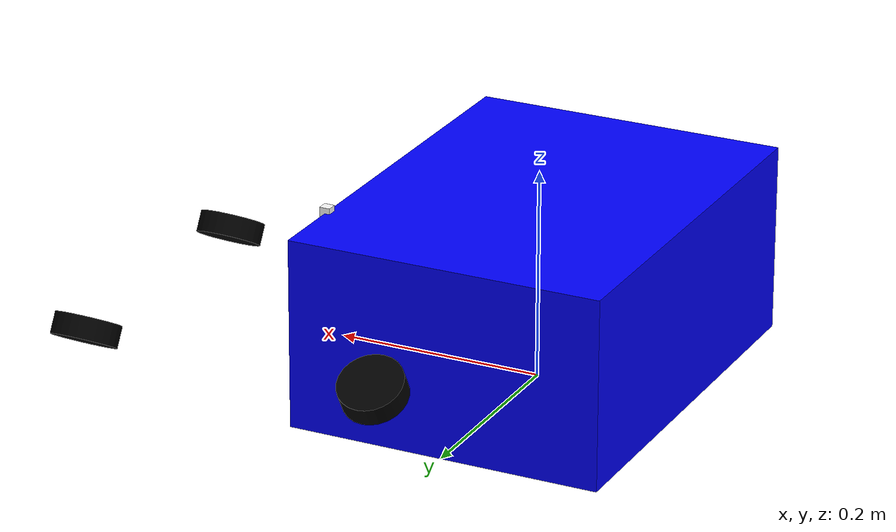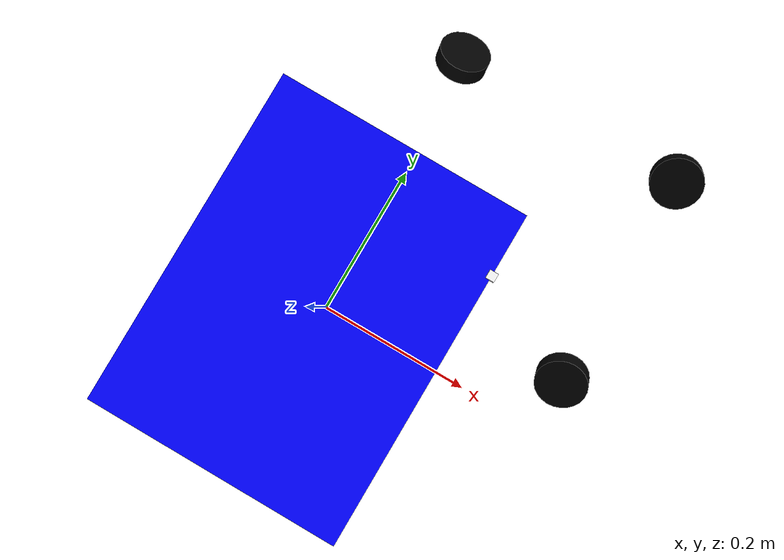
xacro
<?xml version="1.0" encoding="utf-8"?>
<!-- 基于几何体的机器人URDF -->

<robot xmlns:xacro="http://www.ros.org/wiki/xacro" name="car">

  <!-- 定义材料 -->
  <material name="white">
    <color rgba="1 1 1 1" />
  </material>

  <material name="blue">
    <color rgba="0 0 1 1" />
  </material>

  <material name="black">
    <color rgba="0 0 0 1" />
  </material>

  <!-- base_footprint 虚拟链接 -->
  <link name="base_footprint" />

  <!-- base_footprint 到 base_link 的固定关节 -->
  <joint name="base_footprint_joint" type="fixed">
    <origin xyz="0 0 0.09" rpy="0 0 0" />
    <parent link="base_footprint" />
    <child link="base_link" />
  </joint>

  <!-- 主体链接 -->
  <link name="base_link">
    <inertial>
      <origin xyz="0.15 0.125782760442477 0.0905056224994855" rpy="0 0 0" />
      <mass value="33.5751223260577" />
      <inertia
        ixx="0.448373143813742"
        ixy="2.22672766169457E-17"
        ixz="6.55095281406476E-18"
        iyy="0.342599743069878"
        iyz="0.0053567955300172"
        izz="0.580163577047672" />
    </inertial>
    <visual>
      <origin xyz="0 0 0" rpy="0 0 0" />
      <geometry>
        <box size="0.3 0.4 0.18" />
      </geometry>
      <material name="blue" />
    </visual>
    <collision>
      <origin xyz="0 0 0" rpy="0 0 0" />
      <geometry>
        <box size="0.3 0.4 0.18" />
      </geometry>
    </collision>
  </link>

  <!-- 四个轮子链接 -->
  <link name="rbw">
    <inertial>
      <origin xyz="0.0369811320754719 -7.7715611723761E-16 -1.13797860024079E-15" rpy="0 0 0" />
      <mass value="0.166504410640259" />
      <inertia
        ixx="9.49153680465817E-05"
        ixy="-4.20723156859578E-21"
        ixz="3.32636648653541E-22"
        iyy="8.82470165646165E-05"
        iyz="0"
        izz="8.82470165646165E-05" />
    </inertial>
    <visual>
      <origin xyz="0 0 0" rpy="0 0 0" />
      <geometry>
        <cylinder radius="0.03" length="0.02" />
      </geometry>
      <material name="black" />
    </visual>
    <collision>
      <origin xyz="0 0 0" rpy="0 0 0" />
      <geometry>
        <cylinder radius="0.03" length="0.02" />
      </geometry>
    </collision>
  </link>

  <link name="lbw">
    <inertial>
      <origin xyz="0.0369811320754719 -7.7715611723761E-16 -1.13797860024079E-15" rpy="0 0 0" />
      <mass value="0.166504410640259" />
      <inertia
        ixx="9.49153680465817E-05"
        ixy="-4.20723156859578E-21"
        ixz="3.32636648653541E-22"
        iyy="8.82470165646165E-05"
        iyz="0"
        izz="8.82470165646165E-05" />
    </inertial>
    <visual>
      <origin xyz="0 0 0" rpy="0 0 0" />
      <geometry>
        <cylinder radius="0.03" length="0.02" />
      </geometry>
      <material name="black" />
    </visual>
    <collision>
      <origin xyz="0 0 0" rpy="0 0 0" />
      <geometry>
        <cylinder radius="0.03" length="0.02" />
      </geometry>
    </collision>
  </link>

  <link name="lfw">
    <inertial>
      <origin xyz="0.0369811320754719 -7.7715611723761E-16 -1.13797860024079E-15" rpy="0 0 0" />
      <mass value="0.166504410640259" />
      <inertia
        ixx="9.49153680465817E-05"
        ixy="-4.20723156859578E-21"
        ixz="3.32636648653541E-22"
        iyy="8.82470165646165E-05"
        iyz="0"
        izz="8.82470165646165E-05" />
    </inertial>
    <visual>
      <origin xyz="0 0 0" rpy="0 0 0" />
      <geometry>
        <cylinder radius="0.03" length="0.02" />
      </geometry>
      <material name="black" />
    </visual>
    <collision>
      <origin xyz="0 0 0" rpy="0 0 0" />
      <geometry>
        <cylinder radius="0.03" length="0.02" />
      </geometry>
    </collision>
  </link>

  <link name="rfw">
    <inertial>
      <origin xyz="0.0369811320754719 -7.7715611723761E-16 -1.13797860024079E-15" rpy="0 0 0" />
      <mass value="0.166504410640259" />
      <inertia
        ixx="9.49153680465817E-05"
        ixy="-4.20723156859578E-21"
        ixz="3.32636648653541E-22"
        iyy="8.82470165646165E-05"
        iyz="0"
        izz="8.82470165646165E-05" />
    </inertial>
    <visual>
      <origin xyz="0 0 0" rpy="0 0 0" />
      <geometry>
        <cylinder radius="0.03" length="0.02" />
      </geometry>
      <material name="black" />
    </visual>
    <collision>
      <origin xyz="0 0 0" rpy="0 0 0" />
      <geometry>
        <cylinder radius="0.03" length="0.02" />
      </geometry>
    </collision>
  </link>

  <!-- 轮子关节 -->
  <joint name="rbj" type="continuous">
    <origin xyz="0 0.33 0.0299999999999998" rpy="0.526415693374454 0 3.14159265358979" />
    <parent link="base_link" />
    <child link="rbw" />
    <axis xyz="1 0 0" />
  </joint>

  <joint name="lbj" type="continuous">
    <origin xyz="0.28 0.33 0.0299999999999991" rpy="-2.61517696021534 0 0" />
    <parent link="base_link" />
    <child link="lbw" />
    <axis xyz="1 0 0" />
  </joint>

  <joint name="lfj" type="continuous">
    <origin xyz="0.28 0.0700000000000002 0.0299999999999993" rpy="-2.61517696021534 0 0" />
    <parent link="base_link" />
    <child link="lfw" />
    <axis xyz="1 0 0" />
  </joint>

  <joint name="rfj" type="continuous">
    <origin xyz="0 0.0700000000000001 0.0300000000000001" rpy="0.526415693374454 0 -3.14159265358979" />
    <parent link="base_link" />
    <child link="rfw" />
    <axis xyz="1 0 0" />
  </joint>

  <!-- IMU链接 -->
  <link name="imu_link">
    <inertial>
      <origin xyz="0 0 0" rpy="0 0 0" />
      <mass value="0.01" />
      <inertia ixx="0.001" ixy="0" ixz="0" iyy="0.001" iyz="0" izz="0.001" />
    </inertial>
    <visual>
      <origin xyz="0 0 0" rpy="0 0 0" />
      <geometry>
        <box size="0.01 0.01 0.01" />
      </geometry>
      <material name="white" />
    </visual>
    <collision>
      <origin xyz="0 0 0" rpy="0 0 0" />
      <geometry>
        <box size="0.01 0.01 0.01" />
      </geometry>
    </collision>
  </link>

  <!-- IMU关节 -->
  <joint name="imu_joint" type="fixed">
    <origin xyz="0.15 0.125782760442477 0.0905056224994855" rpy="0 0 0" />
    <parent link="base_link" />
    <child link="imu_link" />
  </joint>

  <!-- Gazebo标签 -->
  <gazebo reference="base_link">
    <material>Gazebo/Blue</material>
    <mu1>0.2</mu1>
    <mu2>0.2</mu2>
  </gazebo>

  <gazebo reference="rbw">
    <material>Gazebo/Black</material>
    <mu1>1.0</mu1>
    <mu2>1.0</mu2>
    <kp>1000000.0</kp>
    <kd>100.0</kd>
    <selfCollide>false</selfCollide>
  </gazebo>

  <gazebo reference="lbw">
    <material>Gazebo/Black</material>
    <mu1>1.0</mu1>
    <mu2>1.0</mu2>
    <kp>1000000.0</kp>
    <kd>100.0</kd>
    <selfCollide>false</selfCollide>
  </gazebo>

  <gazebo reference="lfw">
    <material>Gazebo/Black</material>
    <mu1>1.0</mu1>
    <mu2>1.0</mu2>
    <kp>1000000.0</kp>
    <kd>100.0</kd>
    <selfCollide>false</selfCollide>
  </gazebo>

  <gazebo reference="rfw">
    <material>Gazebo/Black</material>
    <mu1>1.0</mu1>
    <mu2>1.0</mu2>
    <kp>1000000.0</kp>
    <kd>100.0</kd>
    <selfCollide>false</selfCollide>
  </gazebo>

</robot>
